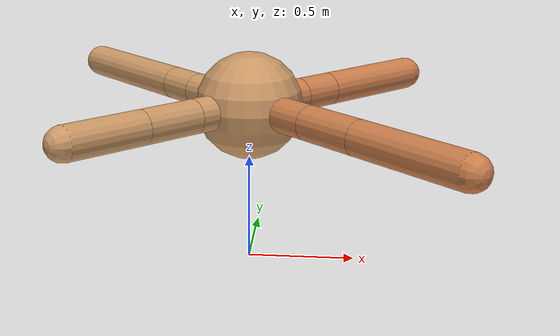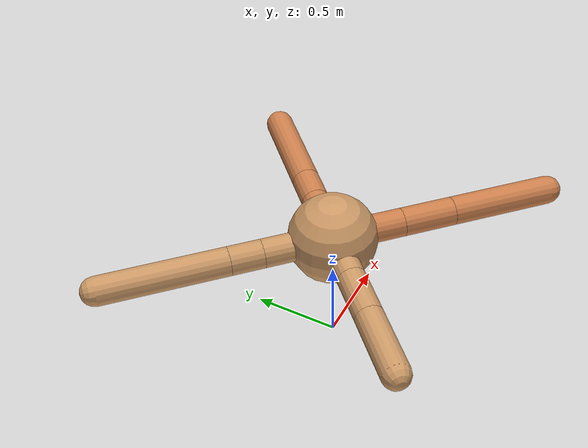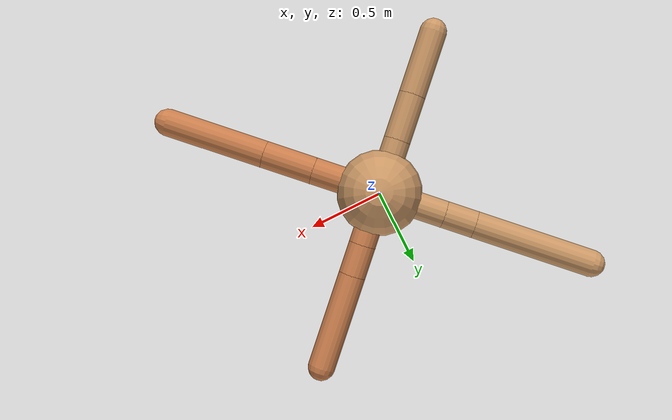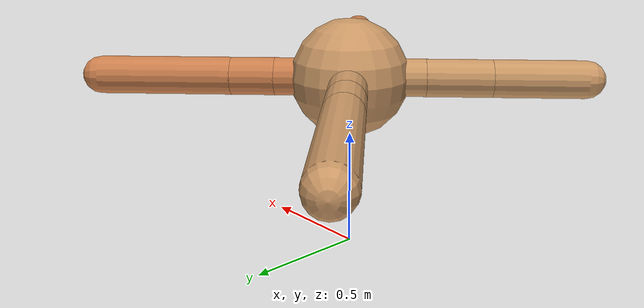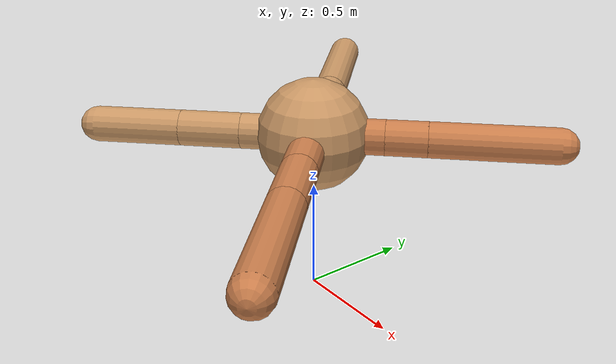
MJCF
<mujoco model="ant">
  <compiler angle="degree" coordinate="local" inertiafromgeom="true" />
  <option integrator="RK4" timestep="0.01" />
  <custom>
    <numeric data="0.0 0.0 0.55 1.0 0.0 0.0 0.0 0.0 1.0 0.0 -1.0 0.0 -1.0 0.0 1.0" name="init_qpos" />
  </custom>
  <default>
    <joint armature="1" damping="1" limited="true" />
    <geom conaffinity="0" condim="3" density="5.0" friction="1.5 0.1 0.1" margin="0.01" rgba="0.8 0.6 0.4 1" />
  </default>
  <worldbody>
    <body name="torso" pos="0 0 0.75">
      <geom name="torso_geom" pos="0 0 0" size="0.25" type="sphere" />

      <body name="front_left_leg" pos="0 0 0">
        <geom fromto="0.0 0.0 0.0 0.22395544283582147 0.22395544283582147 0.0" name="aux_1_geom" size="0.08" type="capsule" rgba=".8 .5 .3 1" />
        <body name="aux_1" pos="0.22395544283582147 0.22395544283582147 0.0">
          <joint axis="0 0 1" name="hip_1" pos="0.0 0.0 0.0" range="-40 40" type="hinge" />
          <geom fromto="0.0 0.0 0.0 0.13104624401367912 0.13104624401367912 0.0" name="left_leg_geom" size="0.08" type="capsule" rgba=".8 .5 .3 1" />
          <body pos="0.13104624401367912 0.13104624401367912 0.0" name="front_left_foot">
            <joint axis="-1 1 0" name="ankle_1" pos="0.0 0.0 0.0" range="30 100" type="hinge" />
            <geom fromto="0.0 0.0 0.0 0.3953819849461804 0.3953819849461804 0.0" name="left_ankle_geom" size="0.08" type="capsule" rgba=".8 .5 .3 1" />
          </body>
        </body>
      </body>
      <body name="front_right_leg" pos="0 0 0">
        <geom fromto="0.0 0.0 0.0 -0.27909102285455895 0.27909102285455895 0.0" name="aux_2_geom" size="0.08" type="capsule" />
        <body name="aux_2" pos="-0.27909102285455895 0.27909102285455895 0.0">
          <joint axis="0 0 1" name="hip_2" pos="0.0 0.0 0.0" range="-40 40" type="hinge" />
          <geom fromto="0.0 0.0 0.0 -0.1302778693397766 0.1302778693397766 0.0" name="right_leg_geom" size="0.08" type="capsule" />
          <body pos="-0.1302778693397766 0.1302778693397766 0.0" name="front_right_foot">
            <joint axis="1 1 0" name="ankle_2" pos="0.0 0.0 0.0" range="-100 -30" type="hinge" />
            <geom fromto="0.0 0.0 0.0 -0.5019504703065959 0.5019504703065959 0.0" name="right_ankle_geom" size="0.08" type="capsule" />
          </body>
        </body>
      </body>
      <body name="left_back_leg" pos="0 0 0">
        <geom fromto="0.0 0.0 0.0 -0.22591569536663655 -0.22591569536663655 0.0" name="aux_3_geom" size="0.08" type="capsule" />
        <body name="aux_3" pos="-0.22591569536663655 -0.22591569536663655 0.0">
          <joint axis="0 0 1" name="hip_3" pos="0.0 0.0 0.0" range="-40 40" type="hinge" />
          <geom fromto="0.0 0.0 0.0 -0.1948267560273755 -0.1948267560273755 0.0" name="back_leg_geom" size="0.08" type="capsule" />
          <body pos="-0.1948267560273755 -0.1948267560273755 0.0" name="left_back_foot">
            <joint axis="-1 1 0" name="ankle_3" pos="0.0 0.0 0.0" range="-100 -30" type="hinge" />
            <geom fromto="0.0 0.0 0.0 -0.27322611989514484 -0.27322611989514484 0.0" name="third_ankle_geom" size="0.08" type="capsule" />
          </body>
        </body>
      </body>
      <body name="right_back_leg" pos="0 0 0">
        <geom fromto="0.0 0.0 0.0 0.28483796690309776 -0.28483796690309776 0.0" name="aux_4_geom" size="0.08" type="capsule" rgba=".8 .5 .3 1" />
        <body name="aux_4" pos="0.28483796690309776 -0.28483796690309776 0.0">
          <joint axis="0 0 1" name="hip_4" pos="0.0 0.0 0.0" range="-40 40" type="hinge" />
          <geom fromto="0.0 0.0 0.0 0.21112459717196713 -0.21112459717196713 0.0" name="rightback_leg_geom" size="0.08" type="capsule" rgba=".8 .5 .3 1" />
          <body pos="0.21112459717196713 -0.21112459717196713 0.0" name="right_back_foot">
            <joint axis="1 1 0" name="ankle_4" pos="0.0 0.0 0.0" range="30 100" type="hinge" />
            <geom fromto="0.0 0.0 0.0 0.41398107571553516 -0.41398107571553516 0.0" name="fourth_ankle_geom" size="0.08" type="capsule" rgba=".8 .5 .3 1" />
          </body>
        </body>
      </body>
    </body>
  </worldbody>
  <actuator>
    <motor ctrllimited="true" ctrlrange="-1.0 1.0" joint="hip_4" gear="150" />
    <motor ctrllimited="true" ctrlrange="-1.0 1.0" joint="ankle_4" gear="150" />
    <motor ctrllimited="true" ctrlrange="-1.0 1.0" joint="hip_1" gear="150" />
    <motor ctrllimited="true" ctrlrange="-1.0 1.0" joint="ankle_1" gear="150" />
    <motor ctrllimited="true" ctrlrange="-1.0 1.0" joint="hip_2" gear="150" />
    <motor ctrllimited="true" ctrlrange="-1.0 1.0" joint="ankle_2" gear="150" />
    <motor ctrllimited="true" ctrlrange="-1.0 1.0" joint="hip_3" gear="150" />
    <motor ctrllimited="true" ctrlrange="-1.0 1.0" joint="ankle_3" gear="150" />
  </actuator>
</mujoco>
